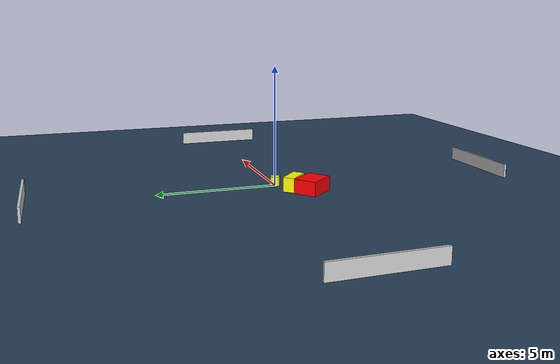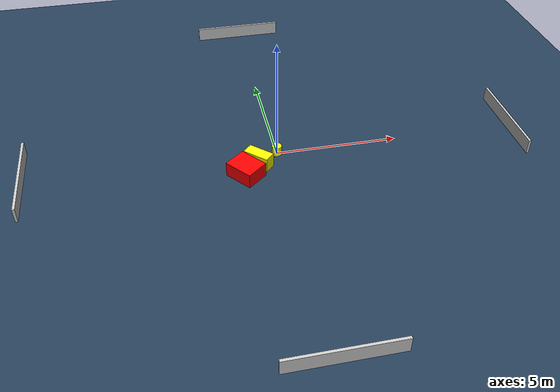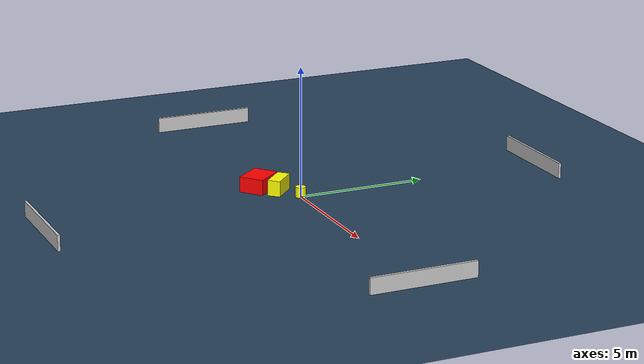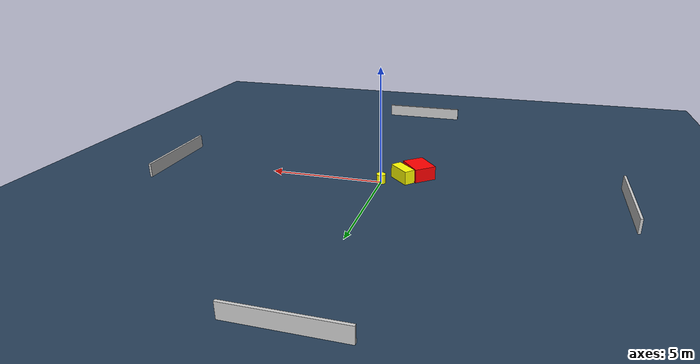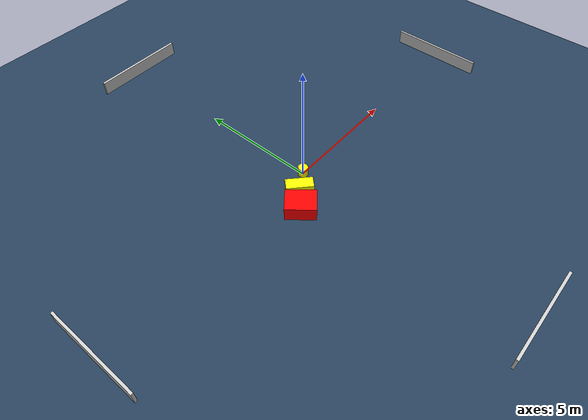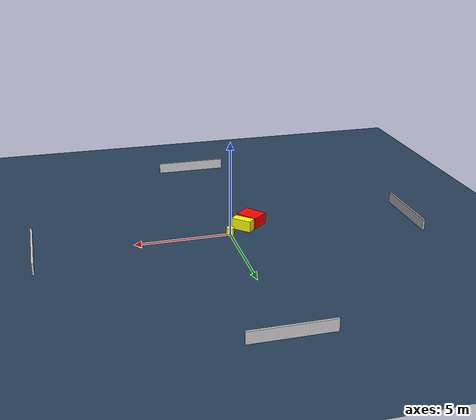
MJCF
<?xml version="1.0" ?>
<mujoco model="generated_environment">
  <option timestep="0.01" integrator="RK4" cone="elliptic"/>
  <default>
    <geom density="1"/>
  </default>
  <asset>
    <texture builtin="gradient" height="3072" name="skybox" rgb1="0.3 0.5 0.7" rgb2="0 0 0" type="skybox" width="512"/>
    <texture builtin="checker" height="300" name="groundplane" rgb1="0.2 0.3 0.4" rgb2="0.1 0.2 0.3" type="2d" width="300"/>
    <material name="groundplane" reflectance="0.2" texrepeat="5 5" texture="groundplane"/>
  </asset>
  <worldbody>
    <light dir="0 0 -1" directional="true" pos="0 0 1.5"/>
    <geom condim="3" friction="0.5 0.005 0.001" material="groundplane" name="floor" pos="0 0 0" size="0 0 0.05" type="plane"/>
    <body name="walls">
      <geom name="wall_1" condim="4" pos="-10.0 0.0 0.3" rgba="0.800000011920929 0.800000011920929 0.800000011920929 1.0" size="0.05 2.0 0.3" type="box"/>
      <geom name="wall_2" condim="4" pos="10.0 0.0 0.3" rgba="0.800000011920929 0.800000011920929 0.800000011920929 1.0" size="0.05 2.0 0.3" type="box"/>
      <geom name="wall_3" condim="4" pos="0.0 -10.0 0.3" rgba="0.800000011920929 0.800000011920929 0.800000011920929 1.0" size="2.0 0.05 0.3" type="box"/>
      <geom name="wall_4" condim="4" pos="0.0 10.0 0.3" rgba="0.800000011920929 0.800000011920929 0.800000011920929 1.0" size="2.0 0.05 0.3" type="box"/>
    </body>
    <body name="robot">
      <joint name="joint_x" type="slide" pos="0 0 0" axis="1 0 0"/>
      <joint name="joint_y" type="slide" pos="0 0 0" axis="0 1 0"/>
      <geom name="robot" type="cylinder" pos="0.0 0.0 0.2" size="0.2 0.2 0.0" mass="5.0" friction="1.0 0.005 0.0001" condim="4" rgba="1.0 1.0 0.0 1.0"/>
    </body>
    <body name="obstacle_1_movable">
      <geom name="obstacle_1_movable" condim="4" pos="-0.8388406620630606 -0.52781193627799 0.3" euler="0 0 46.74697966142135" friction="0.0 0.005 0.001" rgba="1.0 1.0 0.0 1.0" size="0.24282559148892896 0.540382489546064 0.3" type="box" mass="0.1"/>
      <joint type="free"/>
    </body>
    <body name="obstacle_2_static">
      <geom name="obstacle_2_static" condim="4" pos="-1.4420822618249467 -1.092710173409053 0.3" euler="0 0 39.17804900055804" friction="0.0 0.005 0.001" rgba="1.0 0.0 0.0 1.0" size="0.4835948198389065 0.6060939139176849 0.3" type="box"/>
    </body>
  </worldbody>
  <actuator>
    <motor name="actuator_x" joint="joint_x" gear="1" ctrlrange="-1 1"/>
    <motor name="actuator_y" joint="joint_y" gear="1" ctrlrange="-1 1"/>
  </actuator>
</mujoco>
